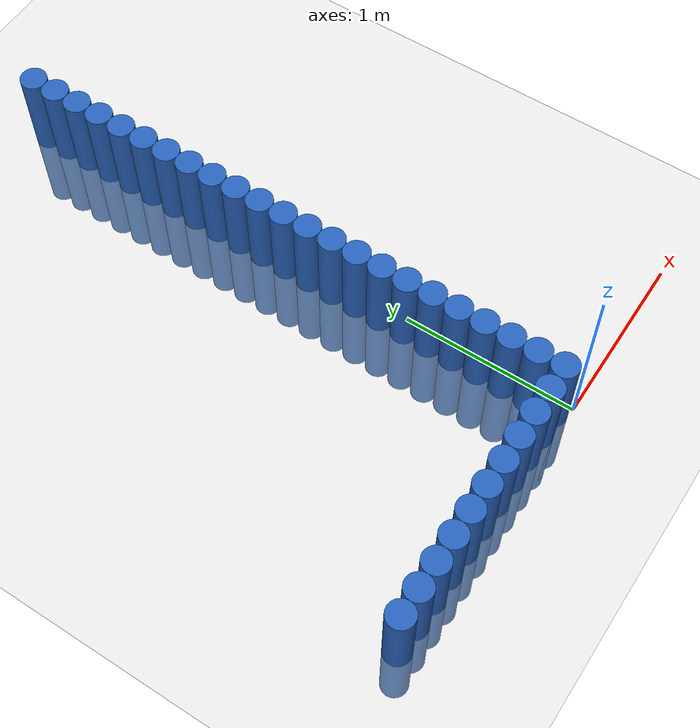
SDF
<sdf version="1.6">
 <world name="default">
  <model name="ground_plane">
   <static>1</static>
   <link name="link">
    <collision name="collision">
     <geometry><plane><normal>0 0 1</normal><size>100 100</size></plane></geometry>
     <surface><friction><ode><mu>100</mu><mu2>50</mu2></ode></friction></surface>
    </collision>
    <visual name="visual">
     <cast_shadows>0</cast_shadows>
     <geometry><plane><normal>0 0 1</normal><size>100 100</size></plane></geometry>
     <material>
      <script><uri>file://media/materials/scripts/gazebo.material</uri><name>Gazebo/Grey</name></script>
     </material>
    </visual>
   </link>
  </model>
  <model name="unit_cylinder_0">
   <static>1</static>
   <pose>-0.075000 0.075000 0.000000 0.000000 0.000000 0.000000</pose>
   <link name="link">
    <inertial>
     <mass>1</mass>
     <inertia><ixx>0.145833</ixx><ixy>0</ixy><ixz>0</ixz><iyy>0.145833</iyy><iyz>0</iyz><izz>0.125</izz></inertia>
    </inertial>
    <collision name="collision">
     <geometry><cylinder><radius>0.075000</radius><length>1</length></cylinder></geometry>
    </collision>
    <visual name="visual">
     <geometry><cylinder><radius>0.075000</radius><length>1</length></cylinder></geometry>
     <material>
      <ambient>0.152000 0.379000 0.720000 1</ambient>
      <diffuse>0.152000 0.379000 0.720000 1</diffuse>
     </material>
     <material>
      <script><name>Gazebo/Grey</name><uri>file://media/materials/scripts/gazebo.material</uri></script>
     </material>
    </visual>
   </link>
  </model>
  <model name="libT2B_86_16">
   <static>1</static>
   <pose>-0.225000 0.075000 0.000000 0.000000 0.000000 0.000000</pose>
   <link name="link">
    <inertial>
     <mass>1</mass>
     <inertia><ixx>0.145833</ixx><ixy>0</ixy><ixz>0</ixz><iyy>0.145833</iyy><iyz>0</iyz><izz>0.125</izz></inertia>
    </inertial>
    <collision name="collision">
     <geometry><cylinder><radius>0.075000</radius><length>0.8</length></cylinder></geometry>
    </collision>
    <visual name="visual">
     <geometry><cylinder><radius>0.075000</radius><length>0.8</length></cylinder></geometry>
     <material>
      <ambient>0.152000 0.379000 0.720000 1</ambient>
      <diffuse>0.152000 0.379000 0.720000 1</diffuse>
     </material>
     <material>
      <script><name>Gazebo/Grey</name><uri>file://media/materials/scripts/gazebo.material</uri></script>
     </material>
    </visual>
   </link>
   <plugin name="libT2B_86_16" filename="libT2B_86_16.so"/>
  </model>
  <model name="libL2R_127_4">
   <static>1</static>
   <pose>-0.225000 0.075000 0.000000 0.000000 0.000000 0.000000</pose>
   <link name="link">
    <inertial>
     <mass>1</mass>
     <inertia><ixx>0.145833</ixx><ixy>0</ixy><ixz>0</ixz><iyy>0.145833</iyy><iyz>0</iyz><izz>0.125</izz></inertia>
    </inertial>
    <collision name="collision">
     <geometry><cylinder><radius>0.075000</radius><length>0.8</length></cylinder></geometry>
    </collision>
    <visual name="visual">
     <geometry><cylinder><radius>0.075000</radius><length>0.8</length></cylinder></geometry>
     <material>
      <ambient>0.152000 0.379000 0.720000 1</ambient>
      <diffuse>0.152000 0.379000 0.720000 1</diffuse>
     </material>
     <material>
      <script><name>Gazebo/Grey</name><uri>file://media/materials/scripts/gazebo.material</uri></script>
     </material>
    </visual>
   </link>
   <plugin name="libL2R_127_4" filename="libL2R_127_4.so"/>
  </model>
  <model name="libL2R_42_5">
   <static>1</static>
   <pose>-0.225000 0.075000 0.000000 0.000000 0.000000 0.000000</pose>
   <link name="link">
    <inertial>
     <mass>1</mass>
     <inertia><ixx>0.145833</ixx><ixy>0</ixy><ixz>0</ixz><iyy>0.145833</iyy><iyz>0</iyz><izz>0.125</izz></inertia>
    </inertial>
    <collision name="collision">
     <geometry><cylinder><radius>0.075000</radius><length>0.8</length></cylinder></geometry>
    </collision>
    <visual name="visual">
     <geometry><cylinder><radius>0.075000</radius><length>0.8</length></cylinder></geometry>
     <material>
      <ambient>0.152000 0.379000 0.720000 1</ambient>
      <diffuse>0.152000 0.379000 0.720000 1</diffuse>
     </material>
     <material>
      <script><name>Gazebo/Grey</name><uri>file://media/materials/scripts/gazebo.material</uri></script>
     </material>
    </visual>
   </link>
   <plugin name="libL2R_42_5" filename="libL2R_42_5.so"/>
  </model>
  <model name="libR2L_68_12">
   <static>1</static>
   <pose>-0.225000 0.075000 0.000000 0.000000 0.000000 0.000000</pose>
   <link name="link">
    <inertial>
     <mass>1</mass>
     <inertia><ixx>0.145833</ixx><ixy>0</ixy><ixz>0</ixz><iyy>0.145833</iyy><iyz>0</iyz><izz>0.125</izz></inertia>
    </inertial>
    <collision name="collision">
     <geometry><cylinder><radius>0.075000</radius><length>0.8</length></cylinder></geometry>
    </collision>
    <visual name="visual">
     <geometry><cylinder><radius>0.075000</radius><length>0.8</length></cylinder></geometry>
     <material>
      <ambient>0.152000 0.379000 0.720000 1</ambient>
      <diffuse>0.152000 0.379000 0.720000 1</diffuse>
     </material>
     <material>
      <script><name>Gazebo/Grey</name><uri>file://media/materials/scripts/gazebo.material</uri></script>
     </material>
    </visual>
   </link>
   <plugin name="libR2L_68_12" filename="libR2L_68_12.so"/>
  </model>
  <model name="libB2T_174_8">
   <static>1</static>
   <pose>-0.225000 0.075000 0.000000 0.000000 0.000000 0.000000</pose>
   <link name="link">
    <inertial>
     <mass>1</mass>
     <inertia><ixx>0.145833</ixx><ixy>0</ixy><ixz>0</ixz><iyy>0.145833</iyy><iyz>0</iyz><izz>0.125</izz></inertia>
    </inertial>
    <collision name="collision">
     <geometry><cylinder><radius>0.075000</radius><length>0.8</length></cylinder></geometry>
    </collision>
    <visual name="visual">
     <geometry><cylinder><radius>0.075000</radius><length>0.8</length></cylinder></geometry>
     <material>
      <ambient>0.152000 0.379000 0.720000 1</ambient>
      <diffuse>0.152000 0.379000 0.720000 1</diffuse>
     </material>
     <material>
      <script><name>Gazebo/Grey</name><uri>file://media/materials/scripts/gazebo.material</uri></script>
     </material>
    </visual>
   </link>
   <plugin name="libB2T_174_8" filename="libB2T_174_8.so"/>
  </model>
  <model name="libL2R_135_12">
   <static>1</static>
   <pose>-0.225000 0.075000 0.000000 0.000000 0.000000 0.000000</pose>
   <link name="link">
    <inertial>
     <mass>1</mass>
     <inertia><ixx>0.145833</ixx><ixy>0</ixy><ixz>0</ixz><iyy>0.145833</iyy><iyz>0</iyz><izz>0.125</izz></inertia>
    </inertial>
    <collision name="collision">
     <geometry><cylinder><radius>0.075000</radius><length>0.8</length></cylinder></geometry>
    </collision>
    <visual name="visual">
     <geometry><cylinder><radius>0.075000</radius><length>0.8</length></cylinder></geometry>
     <material>
      <ambient>0.152000 0.379000 0.720000 1</ambient>
      <diffuse>0.152000 0.379000 0.720000 1</diffuse>
     </material>
     <material>
      <script><name>Gazebo/Grey</name><uri>file://media/materials/scripts/gazebo.material</uri></script>
     </material>
    </visual>
   </link>
   <plugin name="libL2R_135_12" filename="libL2R_135_12.so"/>
  </model>
  <model name="libT2B_86_16">
   <static>1</static>
   <pose>-0.225000 0.075000 0.000000 0.000000 0.000000 0.000000</pose>
   <link name="link">
    <inertial>
     <mass>1</mass>
     <inertia><ixx>0.145833</ixx><ixy>0</ixy><ixz>0</ixz><iyy>0.145833</iyy><iyz>0</iyz><izz>0.125</izz></inertia>
    </inertial>
    <collision name="collision">
     <geometry><cylinder><radius>0.075000</radius><length>0.8</length></cylinder></geometry>
    </collision>
    <visual name="visual">
     <geometry><cylinder><radius>0.075000</radius><length>0.8</length></cylinder></geometry>
     <material>
      <ambient>0.152000 0.379000 0.720000 1</ambient>
      <diffuse>0.152000 0.379000 0.720000 1</diffuse>
     </material>
     <material>
      <script><name>Gazebo/Grey</name><uri>file://media/materials/scripts/gazebo.material</uri></script>
     </material>
    </visual>
   </link>
   <plugin name="libT2B_86_16" filename="libT2B_86_16.so"/>
  </model>
  <model name="libR2L_180_2">
   <static>1</static>
   <pose>-0.225000 0.075000 0.000000 0.000000 0.000000 0.000000</pose>
   <link name="link">
    <inertial>
     <mass>1</mass>
     <inertia><ixx>0.145833</ixx><ixy>0</ixy><ixz>0</ixz><iyy>0.145833</iyy><iyz>0</iyz><izz>0.125</izz></inertia>
    </inertial>
    <collision name="collision">
     <geometry><cylinder><radius>0.075000</radius><length>0.8</length></cylinder></geometry>
    </collision>
    <visual name="visual">
     <geometry><cylinder><radius>0.075000</radius><length>0.8</length></cylinder></geometry>
     <material>
      <ambient>0.152000 0.379000 0.720000 1</ambient>
      <diffuse>0.152000 0.379000 0.720000 1</diffuse>
     </material>
     <material>
      <script><name>Gazebo/Grey</name><uri>file://media/materials/scripts/gazebo.material</uri></script>
     </material>
    </visual>
   </link>
   <plugin name="libR2L_180_2" filename="libR2L_180_2.so"/>
  </model>
  <model name="unit_cylinder_1">
   <static>1</static>
   <pose>-0.225000 0.075000 0.000000 0.000000 0.000000 0.000000</pose>
   <link name="link">
    <inertial>
     <mass>1</mass>
     <inertia><ixx>0.145833</ixx><ixy>0</ixy><ixz>0</ixz><iyy>0.145833</iyy><iyz>0</iyz><izz>0.125</izz></inertia>
    </inertial>
    <collision name="collision">
     <geometry><cylinder><radius>0.075000</radius><length>1</length></cylinder></geometry>
    </collision>
    <visual name="visual">
     <geometry><cylinder><radius>0.075000</radius><length>1</length></cylinder></geometry>
     <material>
      <ambient>0.152000 0.379000 0.720000 1</ambient>
      <diffuse>0.152000 0.379000 0.720000 1</diffuse>
     </material>
     <material>
      <script><name>Gazebo/Grey</name><uri>file://media/materials/scripts/gazebo.material</uri></script>
     </material>
    </visual>
   </link>
  </model>
  <model name="unit_cylinder_2">
   <static>1</static>
   <pose>-0.375000 0.075000 0.000000 0.000000 0.000000 0.000000</pose>
   <link name="link">
    <inertial>
     <mass>1</mass>
     <inertia><ixx>0.145833</ixx><ixy>0</ixy><ixz>0</ixz><iyy>0.145833</iyy><iyz>0</iyz><izz>0.125</izz></inertia>
    </inertial>
    <collision name="collision">
     <geometry><cylinder><radius>0.075000</radius><length>1</length></cylinder></geometry>
    </collision>
    <visual name="visual">
     <geometry><cylinder><radius>0.075000</radius><length>1</length></cylinder></geometry>
     <material>
      <ambient>0.152000 0.379000 0.720000 1</ambient>
      <diffuse>0.152000 0.379000 0.720000 1</diffuse>
     </material>
     <material>
      <script><name>Gazebo/Grey</name><uri>file://media/materials/scripts/gazebo.material</uri></script>
     </material>
    </visual>
   </link>
  </model>
  <model name="unit_cylinder_3">
   <static>1</static>
   <pose>-0.525000 0.075000 0.000000 0.000000 0.000000 0.000000</pose>
   <link name="link">
    <inertial>
     <mass>1</mass>
     <inertia><ixx>0.145833</ixx><ixy>0</ixy><ixz>0</ixz><iyy>0.145833</iyy><iyz>0</iyz><izz>0.125</izz></inertia>
    </inertial>
    <collision name="collision">
     <geometry><cylinder><radius>0.075000</radius><length>1</length></cylinder></geometry>
    </collision>
    <visual name="visual">
     <geometry><cylinder><radius>0.075000</radius><length>1</length></cylinder></geometry>
     <material>
      <ambient>0.152000 0.379000 0.720000 1</ambient>
      <diffuse>0.152000 0.379000 0.720000 1</diffuse>
     </material>
     <material>
      <script><name>Gazebo/Grey</name><uri>file://media/materials/scripts/gazebo.material</uri></script>
     </material>
    </visual>
   </link>
  </model>
  <model name="unit_cylinder_4">
   <static>1</static>
   <pose>-0.675000 0.075000 0.000000 0.000000 0.000000 0.000000</pose>
   <link name="link">
    <inertial>
     <mass>1</mass>
     <inertia><ixx>0.145833</ixx><ixy>0</ixy><ixz>0</ixz><iyy>0.145833</iyy><iyz>0</iyz><izz>0.125</izz></inertia>
    </inertial>
    <collision name="collision">
     <geometry><cylinder><radius>0.075000</radius><length>1</length></cylinder></geometry>
    </collision>
    <visual name="visual">
     <geometry><cylinder><radius>0.075000</radius><length>1</length></cylinder></geometry>
     <material>
      <ambient>0.152000 0.379000 0.720000 1</ambient>
      <diffuse>0.152000 0.379000 0.720000 1</diffuse>
     </material>
     <material>
      <script><name>Gazebo/Grey</name><uri>file://media/materials/scripts/gazebo.material</uri></script>
     </material>
    </visual>
   </link>
  </model>
  <model name="unit_cylinder_5">
   <static>1</static>
   <pose>-0.825000 0.075000 0.000000 0.000000 0.000000 0.000000</pose>
   <link name="link">
    <inertial>
     <mass>1</mass>
     <inertia><ixx>0.145833</ixx><ixy>0</ixy><ixz>0</ixz><iyy>0.145833</iyy><iyz>0</iyz><izz>0.125</izz></inertia>
    </inertial>
    <collision name="collision">
     <geometry><cylinder><radius>0.075000</radius><length>1</length></cylinder></geometry>
    </collision>
    <visual name="visual">
     <geometry><cylinder><radius>0.075000</radius><length>1</length></cylinder></geometry>
     <material>
      <ambient>0.152000 0.379000 0.720000 1</ambient>
      <diffuse>0.152000 0.379000 0.720000 1</diffuse>
     </material>
     <material>
      <script><name>Gazebo/Grey</name><uri>file://media/materials/scripts/gazebo.material</uri></script>
     </material>
    </visual>
   </link>
  </model>
  <model name="unit_cylinder_6">
   <static>1</static>
   <pose>-0.975000 0.075000 0.000000 0.000000 0.000000 0.000000</pose>
   <link name="link">
    <inertial>
     <mass>1</mass>
     <inertia><ixx>0.145833</ixx><ixy>0</ixy><ixz>0</ixz><iyy>0.145833</iyy><iyz>0</iyz><izz>0.125</izz></inertia>
    </inertial>
    <collision name="collision">
     <geometry><cylinder><radius>0.075000</radius><length>1</length></cylinder></geometry>
    </collision>
    <visual name="visual">
     <geometry><cylinder><radius>0.075000</radius><length>1</length></cylinder></geometry>
     <material>
      <ambient>0.152000 0.379000 0.720000 1</ambient>
      <diffuse>0.152000 0.379000 0.720000 1</diffuse>
     </material>
     <material>
      <script><name>Gazebo/Grey</name><uri>file://media/materials/scripts/gazebo.material</uri></script>
     </material>
    </visual>
   </link>
  </model>
  <model name="unit_cylinder_7">
   <static>1</static>
   <pose>-1.125000 0.075000 0.000000 0.000000 0.000000 0.000000</pose>
   <link name="link">
    <inertial>
     <mass>1</mass>
     <inertia><ixx>0.145833</ixx><ixy>0</ixy><ixz>0</ixz><iyy>0.145833</iyy><iyz>0</iyz><izz>0.125</izz></inertia>
    </inertial>
    <collision name="collision">
     <geometry><cylinder><radius>0.075000</radius><length>1</length></cylinder></geometry>
    </collision>
    <visual name="visual">
     <geometry><cylinder><radius>0.075000</radius><length>1</length></cylinder></geometry>
     <material>
      <ambient>0.152000 0.379000 0.720000 1</ambient>
      <diffuse>0.152000 0.379000 0.720000 1</diffuse>
     </material>
     <material>
      <script><name>Gazebo/Grey</name><uri>file://media/materials/scripts/gazebo.material</uri></script>
     </material>
    </visual>
   </link>
  </model>
  <model name="unit_cylinder_8">
   <static>1</static>
   <pose>-1.275000 0.075000 0.000000 0.000000 0.000000 0.000000</pose>
   <link name="link">
    <inertial>
     <mass>1</mass>
     <inertia><ixx>0.145833</ixx><ixy>0</ixy><ixz>0</ixz><iyy>0.145833</iyy><iyz>0</iyz><izz>0.125</izz></inertia>
    </inertial>
    <collision name="collision">
     <geometry><cylinder><radius>0.075000</radius><length>1</length></cylinder></geometry>
    </collision>
    <visual name="visual">
     <geometry><cylinder><radius>0.075000</radius><length>1</length></cylinder></geometry>
     <material>
      <ambient>0.152000 0.379000 0.720000 1</ambient>
      <diffuse>0.152000 0.379000 0.720000 1</diffuse>
     </material>
     <material>
      <script><name>Gazebo/Grey</name><uri>file://media/materials/scripts/gazebo.material</uri></script>
     </material>
    </visual>
   </link>
  </model>
  <model name="unit_cylinder_9">
   <static>1</static>
   <pose>-1.425000 0.075000 0.000000 0.000000 0.000000 0.000000</pose>
   <link name="link">
    <inertial>
     <mass>1</mass>
     <inertia><ixx>0.145833</ixx><ixy>0</ixy><ixz>0</ixz><iyy>0.145833</iyy><iyz>0</iyz><izz>0.125</izz></inertia>
    </inertial>
    <collision name="collision">
     <geometry><cylinder><radius>0.075000</radius><length>1</length></cylinder></geometry>
    </collision>
    <visual name="visual">
     <geometry><cylinder><radius>0.075000</radius><length>1</length></cylinder></geometry>
     <material>
      <ambient>0.152000 0.379000 0.720000 1</ambient>
      <diffuse>0.152000 0.379000 0.720000 1</diffuse>
     </material>
     <material>
      <script><name>Gazebo/Grey</name><uri>file://media/materials/scripts/gazebo.material</uri></script>
     </material>
    </visual>
   </link>
  </model>
  <model name="unit_cylinder_10">
   <static>1</static>
   <pose>-1.575000 0.075000 0.000000 0.000000 0.000000 0.000000</pose>
   <link name="link">
    <inertial>
     <mass>1</mass>
     <inertia><ixx>0.145833</ixx><ixy>0</ixy><ixz>0</ixz><iyy>0.145833</iyy><iyz>0</iyz><izz>0.125</izz></inertia>
    </inertial>
    <collision name="collision">
     <geometry><cylinder><radius>0.075000</radius><length>1</length></cylinder></geometry>
    </collision>
    <visual name="visual">
     <geometry><cylinder><radius>0.075000</radius><length>1</length></cylinder></geometry>
     <material>
      <ambient>0.152000 0.379000 0.720000 1</ambient>
      <diffuse>0.152000 0.379000 0.720000 1</diffuse>
     </material>
     <material>
      <script><name>Gazebo/Grey</name><uri>file://media/materials/scripts/gazebo.material</uri></script>
     </material>
    </visual>
   </link>
  </model>
  <model name="unit_cylinder_30">
   <static>1</static>
   <pose>-0.075000 0.225000 0.000000 0.000000 0.000000 0.000000</pose>
   <link name="link">
    <inertial>
     <mass>1</mass>
     <inertia><ixx>0.145833</ixx><ixy>0</ixy><ixz>0</ixz><iyy>0.145833</iyy><iyz>0</iyz><izz>0.125</izz></inertia>
    </inertial>
    <collision name="collision">
     <geometry><cylinder><radius>0.075000</radius><length>1</length></cylinder></geometry>
    </collision>
    <visual name="visual">
     <geometry><cylinder><radius>0.075000</radius><length>1</length></cylinder></geometry>
     <material>
      <ambient>0.152000 0.379000 0.720000 1</ambient>
      <diffuse>0.152000 0.379000 0.720000 1</diffuse>
     </material>
     <material>
      <script><name>Gazebo/Grey</name><uri>file://media/materials/scripts/gazebo.material</uri></script>
     </material>
    </visual>
   </link>
  </model>
  <model name="unit_cylinder_32">
   <static>1</static>
   <pose>-0.075000 0.375000 0.000000 0.000000 0.000000 0.000000</pose>
   <link name="link">
    <inertial>
     <mass>1</mass>
     <inertia><ixx>0.145833</ixx><ixy>0</ixy><ixz>0</ixz><iyy>0.145833</iyy><iyz>0</iyz><izz>0.125</izz></inertia>
    </inertial>
    <collision name="collision">
     <geometry><cylinder><radius>0.075000</radius><length>1</length></cylinder></geometry>
    </collision>
    <visual name="visual">
     <geometry><cylinder><radius>0.075000</radius><length>1</length></cylinder></geometry>
     <material>
      <ambient>0.152000 0.379000 0.720000 1</ambient>
      <diffuse>0.152000 0.379000 0.720000 1</diffuse>
     </material>
     <material>
      <script><name>Gazebo/Grey</name><uri>file://media/materials/scripts/gazebo.material</uri></script>
     </material>
    </visual>
   </link>
  </model>
  <model name="unit_cylinder_34">
   <static>1</static>
   <pose>-0.075000 0.525000 0.000000 0.000000 0.000000 0.000000</pose>
   <link name="link">
    <inertial>
     <mass>1</mass>
     <inertia><ixx>0.145833</ixx><ixy>0</ixy><ixz>0</ixz><iyy>0.145833</iyy><iyz>0</iyz><izz>0.125</izz></inertia>
    </inertial>
    <collision name="collision">
     <geometry><cylinder><radius>0.075000</radius><length>1</length></cylinder></geometry>
    </collision>
    <visual name="visual">
     <geometry><cylinder><radius>0.075000</radius><length>1</length></cylinder></geometry>
     <material>
      <ambient>0.152000 0.379000 0.720000 1</ambient>
      <diffuse>0.152000 0.379000 0.720000 1</diffuse>
     </material>
     <material>
      <script><name>Gazebo/Grey</name><uri>file://media/materials/scripts/gazebo.material</uri></script>
     </material>
    </visual>
   </link>
  </model>
  <model name="unit_cylinder_36">
   <static>1</static>
   <pose>-0.075000 0.675000 0.000000 0.000000 0.000000 0.000000</pose>
   <link name="link">
    <inertial>
     <mass>1</mass>
     <inertia><ixx>0.145833</ixx><ixy>0</ixy><ixz>0</ixz><iyy>0.145833</iyy><iyz>0</iyz><izz>0.125</izz></inertia>
    </inertial>
    <collision name="collision">
     <geometry><cylinder><radius>0.075000</radius><length>1</length></cylinder></geometry>
    </collision>
    <visual name="visual">
     <geometry><cylinder><radius>0.075000</radius><length>1</length></cylinder></geometry>
     <material>
      <ambient>0.152000 0.379000 0.720000 1</ambient>
      <diffuse>0.152000 0.379000 0.720000 1</diffuse>
     </material>
     <material>
      <script><name>Gazebo/Grey</name><uri>file://media/materials/scripts/gazebo.material</uri></script>
     </material>
    </visual>
   </link>
  </model>
  <model name="unit_cylinder_38">
   <static>1</static>
   <pose>-0.075000 0.825000 0.000000 0.000000 0.000000 0.000000</pose>
   <link name="link">
    <inertial>
     <mass>1</mass>
     <inertia><ixx>0.145833</ixx><ixy>0</ixy><ixz>0</ixz><iyy>0.145833</iyy><iyz>0</iyz><izz>0.125</izz></inertia>
    </inertial>
    <collision name="collision">
     <geometry><cylinder><radius>0.075000</radius><length>1</length></cylinder></geometry>
    </collision>
    <visual name="visual">
     <geometry><cylinder><radius>0.075000</radius><length>1</length></cylinder></geometry>
     <material>
      <ambient>0.152000 0.379000 0.720000 1</ambient>
      <diffuse>0.152000 0.379000 0.720000 1</diffuse>
     </material>
     <material>
      <script><name>Gazebo/Grey</name><uri>file://media/materials/scripts/gazebo.material</uri></script>
     </material>
    </visual>
   </link>
  </model>
  <model name="unit_cylinder_40">
   <static>1</static>
   <pose>-0.075000 0.975000 0.000000 0.000000 0.000000 0.000000</pose>
   <link name="link">
    <inertial>
     <mass>1</mass>
     <inertia><ixx>0.145833</ixx><ixy>0</ixy><ixz>0</ixz><iyy>0.145833</iyy><iyz>0</iyz><izz>0.125</izz></inertia>
    </inertial>
    <collision name="collision">
     <geometry><cylinder><radius>0.075000</radius><length>1</length></cylinder></geometry>
    </collision>
    <visual name="visual">
     <geometry><cylinder><radius>0.075000</radius><length>1</length></cylinder></geometry>
     <material>
      <ambient>0.152000 0.379000 0.720000 1</ambient>
      <diffuse>0.152000 0.379000 0.720000 1</diffuse>
     </material>
     <material>
      <script><name>Gazebo/Grey</name><uri>file://media/materials/scripts/gazebo.material</uri></script>
     </material>
    </visual>
   </link>
  </model>
  <model name="unit_cylinder_42">
   <static>1</static>
   <pose>-0.075000 1.125000 0.000000 0.000000 0.000000 0.000000</pose>
   <link name="link">
    <inertial>
     <mass>1</mass>
     <inertia><ixx>0.145833</ixx><ixy>0</ixy><ixz>0</ixz><iyy>0.145833</iyy><iyz>0</iyz><izz>0.125</izz></inertia>
    </inertial>
    <collision name="collision">
     <geometry><cylinder><radius>0.075000</radius><length>1</length></cylinder></geometry>
    </collision>
    <visual name="visual">
     <geometry><cylinder><radius>0.075000</radius><length>1</length></cylinder></geometry>
     <material>
      <ambient>0.152000 0.379000 0.720000 1</ambient>
      <diffuse>0.152000 0.379000 0.720000 1</diffuse>
     </material>
     <material>
      <script><name>Gazebo/Grey</name><uri>file://media/materials/scripts/gazebo.material</uri></script>
     </material>
    </visual>
   </link>
  </model>
  <model name="unit_cylinder_44">
   <static>1</static>
   <pose>-0.075000 1.275000 0.000000 0.000000 0.000000 0.000000</pose>
   <link name="link">
    <inertial>
     <mass>1</mass>
     <inertia><ixx>0.145833</ixx><ixy>0</ixy><ixz>0</ixz><iyy>0.145833</iyy><iyz>0</iyz><izz>0.125</izz></inertia>
    </inertial>
    <collision name="collision">
     <geometry><cylinder><radius>0.075000</radius><length>1</length></cylinder></geometry>
    </collision>
    <visual name="visual">
     <geometry><cylinder><radius>0.075000</radius><length>1</length></cylinder></geometry>
     <material>
      <ambient>0.152000 0.379000 0.720000 1</ambient>
      <diffuse>0.152000 0.379000 0.720000 1</diffuse>
     </material>
     <material>
      <script><name>Gazebo/Grey</name><uri>file://media/materials/scripts/gazebo.material</uri></script>
     </material>
    </visual>
   </link>
  </model>
  <model name="unit_cylinder_46">
   <static>1</static>
   <pose>-0.075000 1.425000 0.000000 0.000000 0.000000 0.000000</pose>
   <link name="link">
    <inertial>
     <mass>1</mass>
     <inertia><ixx>0.145833</ixx><ixy>0</ixy><ixz>0</ixz><iyy>0.145833</iyy><iyz>0</iyz><izz>0.125</izz></inertia>
    </inertial>
    <collision name="collision">
     <geometry><cylinder><radius>0.075000</radius><length>1</length></cylinder></geometry>
    </collision>
    <visual name="visual">
     <geometry><cylinder><radius>0.075000</radius><length>1</length></cylinder></geometry>
     <material>
      <ambient>0.152000 0.379000 0.720000 1</ambient>
      <diffuse>0.152000 0.379000 0.720000 1</diffuse>
     </material>
     <material>
      <script><name>Gazebo/Grey</name><uri>file://media/materials/scripts/gazebo.material</uri></script>
     </material>
    </visual>
   </link>
  </model>
  <model name="unit_cylinder_48">
   <static>1</static>
   <pose>-0.075000 1.575000 0.000000 0.000000 0.000000 0.000000</pose>
   <link name="link">
    <inertial>
     <mass>1</mass>
     <inertia><ixx>0.145833</ixx><ixy>0</ixy><ixz>0</ixz><iyy>0.145833</iyy><iyz>0</iyz><izz>0.125</izz></inertia>
    </inertial>
    <collision name="collision">
     <geometry><cylinder><radius>0.075000</radius><length>1</length></cylinder></geometry>
    </collision>
    <visual name="visual">
     <geometry><cylinder><radius>0.075000</radius><length>1</length></cylinder></geometry>
     <material>
      <ambient>0.152000 0.379000 0.720000 1</ambient>
      <diffuse>0.152000 0.379000 0.720000 1</diffuse>
     </material>
     <material>
      <script><name>Gazebo/Grey</name><uri>file://media/materials/scripts/gazebo.material</uri></script>
     </material>
    </visual>
   </link>
  </model>
  <model name="unit_cylinder_50">
   <static>1</static>
   <pose>-0.075000 1.725000 0.000000 0.000000 0.000000 0.000000</pose>
   <link name="link">
    <inertial>
     <mass>1</mass>
     <inertia><ixx>0.145833</ixx><ixy>0</ixy><ixz>0</ixz><iyy>0.145833</iyy><iyz>0</iyz><izz>0.125</izz></inertia>
    </inertial>
    <collision name="collision">
     <geometry><cylinder><radius>0.075000</radius><length>1</length></cylinder></geometry>
    </collision>
    <visual name="visual">
     <geometry><cylinder><radius>0.075000</radius><length>1</length></cylinder></geometry>
     <material>
      <ambient>0.152000 0.379000 0.720000 1</ambient>
      <diffuse>0.152000 0.379000 0.720000 1</diffuse>
     </material>
     <material>
      <script><name>Gazebo/Grey</name><uri>file://media/materials/scripts/gazebo.material</uri></script>
     </material>
    </visual>
   </link>
  </model>
  <model name="unit_cylinder_52">
   <static>1</static>
   <pose>-0.075000 1.875000 0.000000 0.000000 0.000000 0.000000</pose>
   <link name="link">
    <inertial>
     <mass>1</mass>
     <inertia><ixx>0.145833</ixx><ixy>0</ixy><ixz>0</ixz><iyy>0.145833</iyy><iyz>0</iyz><izz>0.125</izz></inertia>
    </inertial>
    <collision name="collision">
     <geometry><cylinder><radius>0.075000</radius><length>1</length></cylinder></geometry>
    </collision>
    <visual name="visual">
     <geometry><cylinder><radius>0.075000</radius><length>1</length></cylinder></geometry>
     <material>
      <ambient>0.152000 0.379000 0.720000 1</ambient>
      <diffuse>0.152000 0.379000 0.720000 1</diffuse>
     </material>
     <material>
      <script><name>Gazebo/Grey</name><uri>file://media/materials/scripts/gazebo.material</uri></script>
     </material>
    </visual>
   </link>
  </model>
  <model name="unit_cylinder_54">
   <static>1</static>
   <pose>-0.075000 2.025000 0.000000 0.000000 0.000000 0.000000</pose>
   <link name="link">
    <inertial>
     <mass>1</mass>
     <inertia><ixx>0.145833</ixx><ixy>0</ixy><ixz>0</ixz><iyy>0.145833</iyy><iyz>0</iyz><izz>0.125</izz></inertia>
    </inertial>
    <collision name="collision">
     <geometry><cylinder><radius>0.075000</radius><length>1</length></cylinder></geometry>
    </collision>
    <visual name="visual">
     <geometry><cylinder><radius>0.075000</radius><length>1</length></cylinder></geometry>
     <material>
      <ambient>0.152000 0.379000 0.720000 1</ambient>
      <diffuse>0.152000 0.379000 0.720000 1</diffuse>
     </material>
     <material>
      <script><name>Gazebo/Grey</name><uri>file://media/materials/scripts/gazebo.material</uri></script>
     </material>
    </visual>
   </link>
  </model>
  <model name="unit_cylinder_56">
   <static>1</static>
   <pose>-0.075000 2.175000 0.000000 0.000000 0.000000 0.000000</pose>
   <link name="link">
    <inertial>
     <mass>1</mass>
     <inertia><ixx>0.145833</ixx><ixy>0</ixy><ixz>0</ixz><iyy>0.145833</iyy><iyz>0</iyz><izz>0.125</izz></inertia>
    </inertial>
    <collision name="collision">
     <geometry><cylinder><radius>0.075000</radius><length>1</length></cylinder></geometry>
    </collision>
    <visual name="visual">
     <geometry><cylinder><radius>0.075000</radius><length>1</length></cylinder></geometry>
     <material>
      <ambient>0.152000 0.379000 0.720000 1</ambient>
      <diffuse>0.152000 0.379000 0.720000 1</diffuse>
     </material>
     <material>
      <script><name>Gazebo/Grey</name><uri>file://media/materials/scripts/gazebo.material</uri></script>
     </material>
    </visual>
   </link>
  </model>
  <model name="unit_cylinder_58">
   <static>1</static>
   <pose>-0.075000 2.325000 0.000000 0.000000 0.000000 0.000000</pose>
   <link name="link">
    <inertial>
     <mass>1</mass>
     <inertia><ixx>0.145833</ixx><ixy>0</ixy><ixz>0</ixz><iyy>0.145833</iyy><iyz>0</iyz><izz>0.125</izz></inertia>
    </inertial>
    <collision name="collision">
     <geometry><cylinder><radius>0.075000</radius><length>1</length></cylinder></geometry>
    </collision>
    <visual name="visual">
     <geometry><cylinder><radius>0.075000</radius><length>1</length></cylinder></geometry>
     <material>
      <ambient>0.152000 0.379000 0.720000 1</ambient>
      <diffuse>0.152000 0.379000 0.720000 1</diffuse>
     </material>
     <material>
      <script><name>Gazebo/Grey</name><uri>file://media/materials/scripts/gazebo.material</uri></script>
     </material>
    </visual>
   </link>
  </model>
  <model name="unit_cylinder_60">
   <static>1</static>
   <pose>-0.075000 2.475000 0.000000 0.000000 0.000000 0.000000</pose>
   <link name="link">
    <inertial>
     <mass>1</mass>
     <inertia><ixx>0.145833</ixx><ixy>0</ixy><ixz>0</ixz><iyy>0.145833</iyy><iyz>0</iyz><izz>0.125</izz></inertia>
    </inertial>
    <collision name="collision">
     <geometry><cylinder><radius>0.075000</radius><length>1</length></cylinder></geometry>
    </collision>
    <visual name="visual">
     <geometry><cylinder><radius>0.075000</radius><length>1</length></cylinder></geometry>
     <material>
      <ambient>0.152000 0.379000 0.720000 1</ambient>
      <diffuse>0.152000 0.379000 0.720000 1</diffuse>
     </material>
     <material>
      <script><name>Gazebo/Grey</name><uri>file://media/materials/scripts/gazebo.material</uri></script>
     </material>
    </visual>
   </link>
  </model>
  <model name="unit_cylinder_62">
   <static>1</static>
   <pose>-0.075000 2.625000 0.000000 0.000000 0.000000 0.000000</pose>
   <link name="link">
    <inertial>
     <mass>1</mass>
     <inertia><ixx>0.145833</ixx><ixy>0</ixy><ixz>0</ixz><iyy>0.145833</iyy><iyz>0</iyz><izz>0.125</izz></inertia>
    </inertial>
    <collision name="collision">
     <geometry><cylinder><radius>0.075000</radius><length>1</length></cylinder></geometry>
    </collision>
    <visual name="visual">
     <geometry><cylinder><radius>0.075000</radius><length>1</length></cylinder></geometry>
     <material>
      <ambient>0.152000 0.379000 0.720000 1</ambient>
      <diffuse>0.152000 0.379000 0.720000 1</diffuse>
     </material>
     <material>
      <script><name>Gazebo/Grey</name><uri>file://media/materials/scripts/gazebo.material</uri></script>
     </material>
    </visual>
   </link>
  </model>
  <model name="unit_cylinder_64">
   <static>1</static>
   <pose>-0.075000 2.775000 0.000000 0.000000 0.000000 0.000000</pose>
   <link name="link">
    <inertial>
     <mass>1</mass>
     <inertia><ixx>0.145833</ixx><ixy>0</ixy><ixz>0</ixz><iyy>0.145833</iyy><iyz>0</iyz><izz>0.125</izz></inertia>
    </inertial>
    <collision name="collision">
     <geometry><cylinder><radius>0.075000</radius><length>1</length></cylinder></geometry>
    </collision>
    <visual name="visual">
     <geometry><cylinder><radius>0.075000</radius><length>1</length></cylinder></geometry>
     <material>
      <ambient>0.152000 0.379000 0.720000 1</ambient>
      <diffuse>0.152000 0.379000 0.720000 1</diffuse>
     </material>
     <material>
      <script><name>Gazebo/Grey</name><uri>file://media/materials/scripts/gazebo.material</uri></script>
     </material>
    </visual>
   </link>
  </model>
  <model name="unit_cylinder_66">
   <static>1</static>
   <pose>-0.075000 2.925000 0.000000 0.000000 0.000000 0.000000</pose>
   <link name="link">
    <inertial>
     <mass>1</mass>
     <inertia><ixx>0.145833</ixx><ixy>0</ixy><ixz>0</ixz><iyy>0.145833</iyy><iyz>0</iyz><izz>0.125</izz></inertia>
    </inertial>
    <collision name="collision">
     <geometry><cylinder><radius>0.075000</radius><length>1</length></cylinder></geometry>
    </collision>
    <visual name="visual">
     <geometry><cylinder><radius>0.075000</radius><length>1</length></cylinder></geometry>
     <material>
      <ambient>0.152000 0.379000 0.720000 1</ambient>
      <diffuse>0.152000 0.379000 0.720000 1</diffuse>
     </material>
     <material>
      <script><name>Gazebo/Grey</name><uri>file://media/materials/scripts/gazebo.material</uri></script>
     </material>
    </visual>
   </link>
  </model>
  <model name="unit_cylinder_68">
   <static>1</static>
   <pose>-0.075000 3.075000 0.000000 0.000000 0.000000 0.000000</pose>
   <link name="link">
    <inertial>
     <mass>1</mass>
     <inertia><ixx>0.145833</ixx><ixy>0</ixy><ixz>0</ixz><iyy>0.145833</iyy><iyz>0</iyz><izz>0.125</izz></inertia>
    </inertial>
    <collision name="collision">
     <geometry><cylinder><radius>0.075000</radius><length>1</length></cylinder></geometry>
    </collision>
    <visual name="visual">
     <geometry><cylinder><radius>0.075000</radius><length>1</length></cylinder></geometry>
     <material>
      <ambient>0.152000 0.379000 0.720000 1</ambient>
      <diffuse>0.152000 0.379000 0.720000 1</diffuse>
     </material>
     <material>
      <script><name>Gazebo/Grey</name><uri>file://media/materials/scripts/gazebo.material</uri></script>
     </material>
    </visual>
   </link>
  </model>
  <model name="unit_cylinder_70">
   <static>1</static>
   <pose>-0.075000 3.225000 0.000000 0.000000 0.000000 0.000000</pose>
   <link name="link">
    <inertial>
     <mass>1</mass>
     <inertia><ixx>0.145833</ixx><ixy>0</ixy><ixz>0</ixz><iyy>0.145833</iyy><iyz>0</iyz><izz>0.125</izz></inertia>
    </inertial>
    <collision name="collision">
     <geometry><cylinder><radius>0.075000</radius><length>1</length></cylinder></geometry>
    </collision>
    <visual name="visual">
     <geometry><cylinder><radius>0.075000</radius><length>1</length></cylinder></geometry>
     <material>
      <ambient>0.152000 0.379000 0.720000 1</ambient>
      <diffuse>0.152000 0.379000 0.720000 1</diffuse>
     </material>
     <material>
      <script><name>Gazebo/Grey</name><uri>file://media/materials/scripts/gazebo.material</uri></script>
     </material>
    </visual>
   </link>
  </model>
  <model name="unit_cylinder_72">
   <static>1</static>
   <pose>-0.075000 3.375000 0.000000 0.000000 0.000000 0.000000</pose>
   <link name="link">
    <inertial>
     <mass>1</mass>
     <inertia><ixx>0.145833</ixx><ixy>0</ixy><ixz>0</ixz><iyy>0.145833</iyy><iyz>0</iyz><izz>0.125</izz></inertia>
    </inertial>
    <collision name="collision">
     <geometry><cylinder><radius>0.075000</radius><length>1</length></cylinder></geometry>
    </collision>
    <visual name="visual">
     <geometry><cylinder><radius>0.075000</radius><length>1</length></cylinder></geometry>
     <material>
      <ambient>0.152000 0.379000 0.720000 1</ambient>
      <diffuse>0.152000 0.379000 0.720000 1</diffuse>
     </material>
     <material>
      <script><name>Gazebo/Grey</name><uri>file://media/materials/scripts/gazebo.material</uri></script>
     </material>
    </visual>
   </link>
  </model>
 </world>
</sdf>
